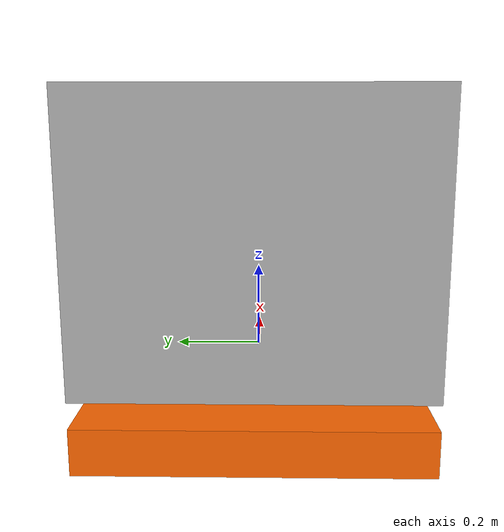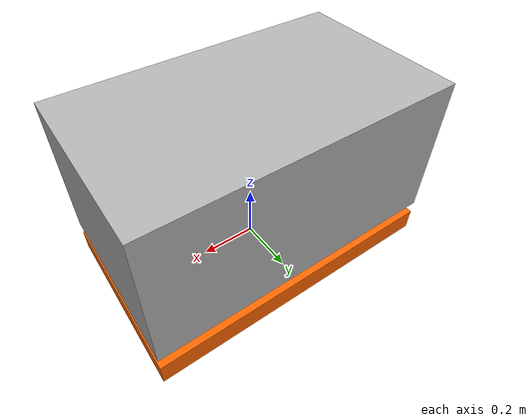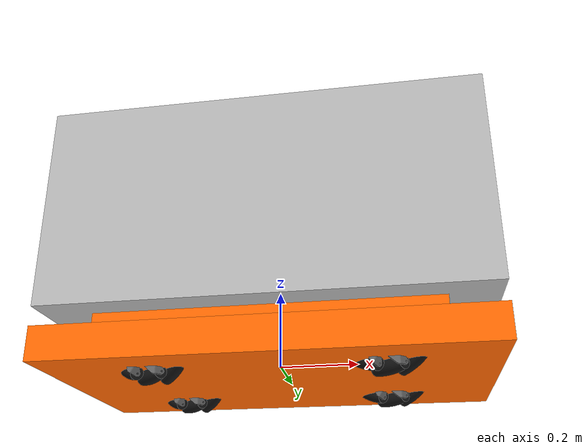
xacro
<?xml version="1.0"?>
<robot xmlns:xacro="http://www.ros.org/wiki/xacro" name="mobile_platform">
    <link name="base_link">
        <visual>
            <geometry>
                <box size="1.08 0.63 0.085"/>
            </geometry>
            <origin rpy="0 0 0" xyz="0 0 0"/>
            <material name="Orange"/>
        </visual>
        <collision>
            <geometry>
                <box size="1.08 0.63 0.085"/>
            </geometry>
        </collision>
        <inertial>
            <mass value="55.04"/>
            <inertia ixx="5.383" ixy="0.0" ixz="0.0" iyy="7.170" iyz="0.0" izz="1.854"/>
        </inertial>
    </link>

    <joint name="base_bottom_to_middle_joint" type="fixed">
        <parent link="base_link" />
        <child link="base_link_middle" />
        <origin xyz="0 0 0.0665" rpy="0 0 0"/>
    </joint>

    <link name="base_link_middle">
        <visual>
            <geometry>
                <box size="0.84 0.48 0.048"/>
            </geometry>
            <origin rpy="0 0 0" xyz="0 0 0.0"/>
            <material name="Orange"/>
        </visual>
        <collision>
            <geometry>
                <box size="0.920 0.51 0.055"/>
            </geometry>
        </collision>
        <inertial>
            <mass value="18.42"/>
            <inertia ixx="1.0866" ixy="0.0" ixz="0.0" iyy="1.437" iyz="0.0" izz="0.357"/>
        </inertial>
    </link>

    <joint name="base_middle_to_top_joint" type="fixed">
        <parent link="base_link_middle" />
        <child link="base_link_top" />
        <origin xyz="0 0 0.2865" rpy="0 0 0"/>
    </joint>

    <link name="base_link_top">
        <visual>
            <geometry>
                <box size="1.08 0.63 0.525"/>
            </geometry>
            <origin rpy="0 0 0" xyz="0 0 0.0"/>
            <material name="Grey"/>
        </visual>
        <collision>
            <geometry>
                <box size="1.08 0.63 0.5335"/>
            </geometry>
        </collision>
        <inertial>
            <mass value="339.96"/>
            <inertia ixx="39.1077" ixy="0.0" ixz="0.0" iyy="42.397" iyz="0.0" izz="18.238"/>
        </inertial>
    </link>
    <link name="front_left_wheel_link">
        <visual>
            <origin xyz="0 0 0" rpy="0 0 0" />
            <geometry>
                <mesh filename="package://lbr_description/meshes/wheels/omni_wheel_1.dae" />
            </geometry>
        </visual>
        <collision>
            <geometry>
                <cylinder length="0.175" radius="0.125" />
            </geometry>
        </collision>

        <inertial>
            <mass value="6.5" />
            <origin xyz="0 0 0" />
            <inertia ixx="0.04197" ixy="0.0" ixz="0.0" iyy="0.0508" iyz="0.0" izz="0.04197"/>
        </inertial>
    </link>

    <link name="front_right_wheel_link">
        <visual>
            <origin xyz="0 0 0" rpy="0 0 0" />
            <geometry>
                <mesh filename="package://lbr_description/meshes/wheels/omni_wheel_1.dae" />
            </geometry>
        </visual>
        <collision>
            <geometry>
                <cylinder length="0.175" radius="0.125" />
            </geometry>
        </collision>

        <inertial>
            <mass value="6.5" />
            <origin xyz="0 0 0" />
            <inertia ixx="0.04197" ixy="0.0" ixz="0.0" iyy="0.0508" iyz="0.0" izz="0.04197"/>
        </inertial>
    </link>

    <link name="back_left_wheel_link">
        <visual>
            <origin xyz="0 0 0" rpy="0 0 0" />
            <geometry>
                <mesh filename="package://lbr_description/meshes/wheels/omni_wheel_1.dae" />
            </geometry>
        </visual>
        <collision>
            <geometry>
                <cylinder length="0.175" radius="0.125" />
            </geometry>
        </collision>

        <inertial>
            <mass value="6.5" />
            <origin xyz="0 0 0" />
            <inertia ixx="0.04197" ixy="0.0" ixz="0.0" iyy="0.0508" iyz="0.0" izz="0.04197"/>
        </inertial>
    </link>

    <link name="back_right_wheel_link">
        <visual>
            <origin xyz="0 0 0" rpy="0 0 0" />
            <geometry>
                <mesh filename="package://lbr_description/meshes/wheels/omni_wheel_1.dae" />
            </geometry>
        </visual>
        <collision>
            <geometry>
                <cylinder length="0.175" radius="0.125" />
            </geometry>
        </collision>
        <inertial>
            <mass value="6.5" />
            <origin xyz="0 0 0" />
            <inertia ixx="0.04197" ixy="0.0" ixz="0.0" iyy="0.0508" iyz="0.0" izz="0.04197"/>
        </inertial>
    </link>

    <joint name="front_left_wheel_joint" type="fixed">
        <parent link="base_link"/>
        <child link="front_left_wheel_link"/>
        <axis xyz="0 1 0"/>
        <origin xyz="0.28 0.1825 0.0535"/>
        <limit effort="100" velocity="100"/>
        <joint_properties damping="0.0" friction="0.0"/>
    </joint>

    <joint name="front_right_wheel_joint" type="fixed">
        <parent link="base_link"/>
        <child link="front_right_wheel_link"/>
        <origin xyz="0.28 -0.1825 0.0535"/>
        <axis xyz="0 1 0"/>
        <limit effort="100" velocity="100"/>
        <joint_properties damping="0.0" friction="0.0"/>
    </joint>

    <joint name="back_left_wheel_joint" type="fixed">
        <parent link="base_link"/>
        <child link="back_left_wheel_link"/>
        <origin xyz="-0.28 0.1825 0.0535"/>
        <axis xyz="0 1 0"/>
        <limit effort="100" velocity="100"/>
        <joint_properties damping="0.0" friction="0.0"/>
    </joint>

    <joint name="back_right_wheel_joint" type="fixed">
        <parent link="base_link"/>
        <child link="back_right_wheel_link"/>
        <origin xyz="-0.28 -0.1825 0.0535"/>
        <axis xyz="0 1 0"/>
        <limit effort="100" velocity="100"/>
        <joint_properties damping="0.0" friction="0.0"/>
    </joint>

    <material name="Orange">
        <color rgba="1.0 0.4 0.0 1.0"/>
    </material>
    <material name="Grey">
        <color rgba="0.7 0.7 0.7 1.0"/>
    </material>
    <material name="DarkGrey">
        <color rgba="0.3 0.3 0.3 1.0"/>
    </material>
    <material name="White">
        <color rgba="1.0 1.0 1.0 1.0"/>
    </material>
    <material name="Black">
        <color rgba="0.0 0.0 0.0 1.0"/>
    </material>
    <material name="Red">
        <color rgba="1.0 0.0 0.0 1.0"/>
    </material>
    <material name="Green">
        <color rgba="0.0 1.0 0.0 1.0"/>
    </material>
    <material name="aluminum">
        <color rgba="0.5 0.5 0.5 1"/>
    </material>

</robot>
